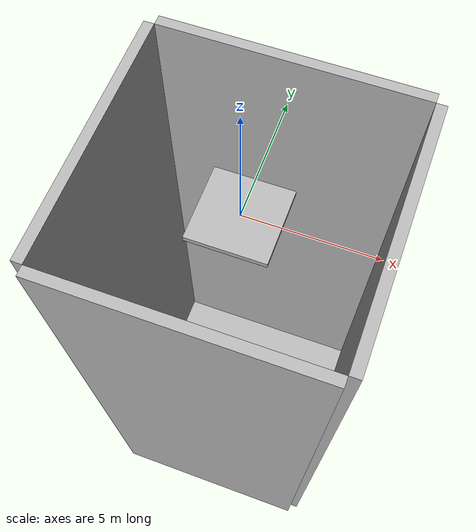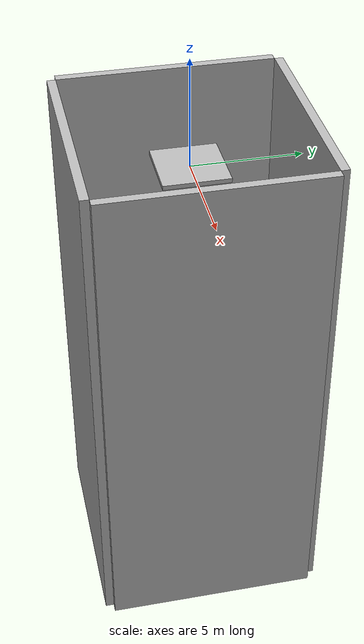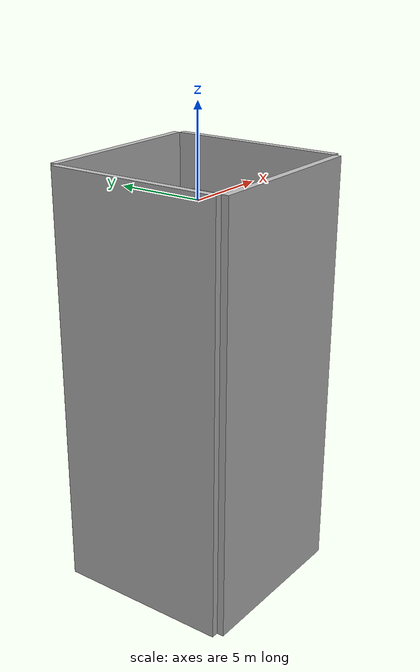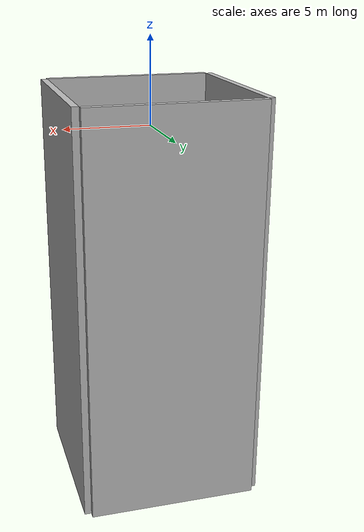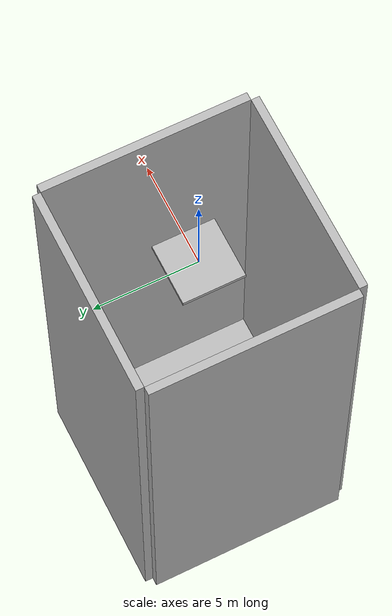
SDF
<?xml version="1.0"?>
<sdf version="1.6">
  <world name="shaft_22m_logic_sitl">
    <include><uri>model://sun</uri></include>
    <scene>
      <ambient>0.4 0.4 0.4 1</ambient>
      <background>0.06 0.06 0.07 1</background>
      <shadows>false</shadows>
    </scene>
    <!-- Logic/PX4 interface test only. The optional Gazebo ray range sensor
         sees this bottom; depth remains Gazebo world truth. -->
    <!-- Supports the disarmed vehicle at the entrance. A SITL-only release
         node removes it after the pilot reaches a stable hover, before descent. -->
    <model name="shaft_launch_pad">
      <static>true</static><pose>0 0 0 0 0 0</pose>
      <link name="link">
        <collision name="collision"><geometry><box><size>3 3 0.2</size></box></geometry></collision>
        <visual name="visual"><geometry><box><size>3 3 0.2</size></box></geometry></visual>
      </link>
    </model>
    <model name="shaft_bottom">
      <static>true</static><pose>0 0 -21.35 0 0 0</pose>
      <link name="link">
        <collision name="collision"><geometry><box><size>10 10 1</size></box></geometry></collision>
        <visual name="visual"><geometry><box><size>10 10 1</size></box></geometry></visual>
      </link>
    </model>
    <model name="shaft_east_wall">
      <static>true</static><pose>5.2 0 -9.9 0 0 0</pose>
      <link name="link">
        <collision name="collision"><geometry><box><size>0.4 10 24</size></box></geometry></collision>
        <visual name="visual"><geometry><box><size>0.4 10 24</size></box></geometry></visual>
      </link>
    </model>
    <model name="shaft_west_wall">
      <static>true</static><pose>-5.2 0 -9.9 0 0 0</pose>
      <link name="link">
        <collision name="collision"><geometry><box><size>0.4 10 24</size></box></geometry></collision>
        <visual name="visual"><geometry><box><size>0.4 10 24</size></box></geometry></visual>
      </link>
    </model>
    <model name="shaft_north_wall">
      <static>true</static><pose>0 5.2 -9.9 0 0 0</pose>
      <link name="link">
        <collision name="collision"><geometry><box><size>10 0.4 24</size></box></geometry></collision>
        <visual name="visual"><geometry><box><size>10 0.4 24</size></box></geometry></visual>
      </link>
    </model>
    <model name="shaft_south_wall">
      <static>true</static><pose>0 -5.2 -9.9 0 0 0</pose>
      <link name="link">
        <collision name="collision"><geometry><box><size>10 0.4 24</size></box></geometry></collision>
        <visual name="visual"><geometry><box><size>10 0.4 24</size></box></geometry></visual>
      </link>
    </model>
  </world>
</sdf>
